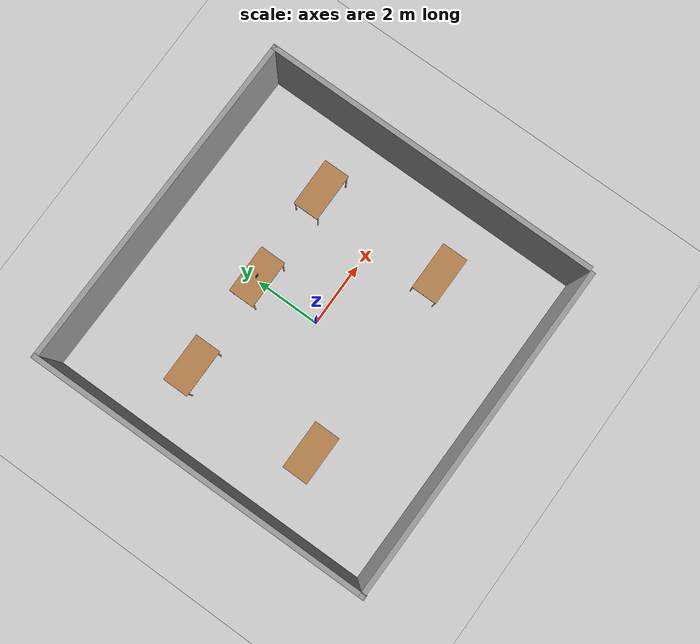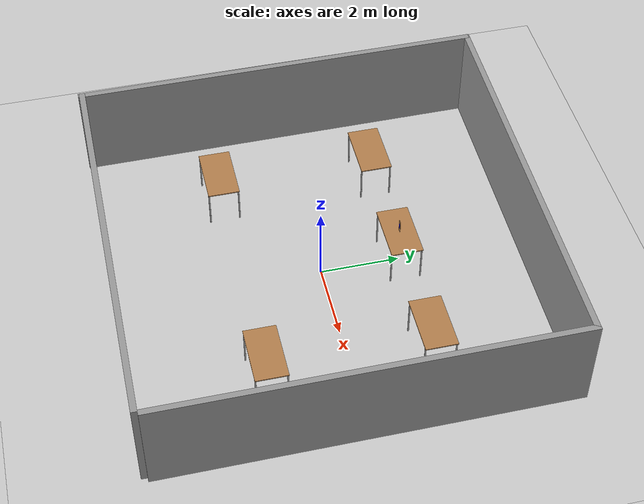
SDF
<sdf version="1.7">
 <world name="default">
  <scene><ambient>0.4 0.4 0.4 1</ambient><background>0.7 0.7 0.7 1</background><shadows>1</shadows></scene>
  <light name="sun" type="directional">
   <pose>0 0 10 0 -0 0</pose>
   <diffuse>0.8 0.8 0.8 1</diffuse>
   <specular>0.2 0.2 0.2 1</specular>
   <attenuation>
    <range>1000</range>
    <constant>0.9</constant>
    <linear>0.01</linear>
    <quadratic>0.001</quadratic>
   </attenuation>
   <direction>-0.5 0.1 -0.9</direction>
   <spot><inner_angle>0</inner_angle><outer_angle>0</outer_angle><falloff>0</falloff></spot>
  </light>
  <model name="ground_plane">
   <static>1</static>
   <link name="link">
    <collision name="collision">
     <geometry><plane><normal>0 0 1</normal><size>100 100</size></plane></geometry>
     <surface><friction><ode><mu>100</mu><mu2>50</mu2></ode></friction></surface>
    </collision>
    <visual name="visual">
     <cast_shadows>0</cast_shadows>
     <geometry><plane><normal>0 0 1</normal><size>100 100</size></plane></geometry>
     <material>
      <script><uri>file://media/materials/scripts/gazebo.material</uri><name>Gazebo/Grey</name></script>
     </material>
    </visual>
   </link>
  </model>
  <physics type="ode">
   <real_time_update_rate>1000</real_time_update_rate>
   <max_step_size>0.001</max_step_size>
   <real_time_factor>1</real_time_factor>
   <ode>
    <solver>
     <type>quick</type>
     <iters>150</iters>
     <precon_iters>0</precon_iters>
     <sor>1.4</sor>
     <use_dynamic_moi_rescaling>1</use_dynamic_moi_rescaling>
    </solver>
    <constraints>
     <cfm>1e-05</cfm>
     <erp>0.2</erp>
     <contact_max_correcting_vel>2000</contact_max_correcting_vel>
     <contact_surface_layer>0.01</contact_surface_layer>
    </constraints>
   </ode>
  </physics>
  <gravity>0 0 -9.8</gravity>
  <magnetic_field>6e-06 2.3e-05 -4.2e-05</magnetic_field>
  <atmosphere type="adiabatic"/>
  <spherical_coordinates>
   <surface_model>EARTH_WGS84</surface_model>
   <latitude_deg>0</latitude_deg>
   <longitude_deg>0</longitude_deg>
   <elevation>0</elevation>
   <heading_deg>0</heading_deg>
  </spherical_coordinates>
  <model name="world">
   <pose>-0.027887 0.002538 0 0 -0 0</pose>
   <link name="Wall_11">
    <collision name="Wall_11_Collision">
     <geometry><box><size>10.4422 0.15 2.5</size></box></geometry>
     <pose>0 0 1.25 0 -0 0</pose>
    </collision>
    <visual name="Wall_11_Visual">
     <pose>0 0 1.25 0 -0 0</pose>
     <geometry><box><size>10.4422 0.15 2.5</size></box></geometry>
     <material>
      <script><uri>file://media/materials/scripts/gazebo.material</uri><name>Gazebo/Grey</name></script>
      <ambient>1 1 1 1</ambient>
     </material>
     <meta><layer>0</layer></meta>
    </visual>
    <pose>-5.09946 0.019253 0 0 -0 -1.56533</pose>
   </link>
   <link name="Wall_3">
    <collision name="Wall_3_Collision">
     <geometry><box><size>10.3804 0.15 2.5</size></box></geometry>
     <pose>0 0 1.25 0 -0 0</pose>
    </collision>
    <visual name="Wall_3_Visual">
     <pose>0 0 1.25 0 -0 0</pose>
     <geometry><box><size>10.3804 0.15 2.5</size></box></geometry>
     <material>
      <script><uri>file://media/materials/scripts/gazebo.material</uri><name>Gazebo/Grey</name></script>
      <ambient>1 1 1 1</ambient>
     </material>
     <meta><layer>0</layer></meta>
    </visual>
    <pose>-0.012813 5.12502 0 0 -0 -0.013069</pose>
   </link>
   <link name="Wall_5">
    <collision name="Wall_5_Collision">
     <geometry><box><size>10.2455 0.15 2.5</size></box></geometry>
     <pose>0 0 1.25 0 -0 0</pose>
    </collision>
    <visual name="Wall_5_Visual">
     <pose>0 0 1.25 0 -0 0</pose>
     <geometry><box><size>10.2455 0.15 2.5</size></box></geometry>
     <material>
      <script><uri>file://media/materials/scripts/gazebo.material</uri><name>Gazebo/Grey</name></script>
      <ambient>1 1 1 1</ambient>
     </material>
     <meta><layer>0</layer></meta>
    </visual>
    <pose>-0.023799 -5.14616 0 0 -0 -0.009113</pose>
   </link>
   <link name="Wall_7">
    <collision name="Wall_7_Collision">
     <geometry><box><size>10.25 0.15 2.5</size></box></geometry>
     <pose>0 0 1.25 0 -0 0</pose>
    </collision>
    <visual name="Wall_7_Visual">
     <pose>0 0 1.25 0 -0 0</pose>
     <geometry><box><size>10.25 0.15 2.5</size></box></geometry>
     <material>
      <script><uri>file://media/materials/scripts/gazebo.material</uri><name>Gazebo/Grey</name></script>
      <ambient>1 1 1 1</ambient>
     </material>
     <meta><layer>0</layer></meta>
    </visual>
    <pose>5.12854 0.008169 0 0 -0 -1.5708</pose>
   </link>
   <static>1</static>
  </model>
  <model name="table">
   <static>1</static>
   <link name="link">
    <collision name="navigation_laser_blocker">
     <pose>0 0 0.48 0 -0 0</pose>
     <geometry><box><size>1.55 0.85 0.92</size></box></geometry>
    </collision>
    <collision name="surface">
     <pose>0 0 1 0 -0 0</pose>
     <geometry><box><size>1.5 0.8 0.03</size></box></geometry>
     <surface><friction><ode><mu>0.6</mu><mu2>0.6</mu2></ode></friction></surface>
    </collision>
    <visual name="visual1">
     <pose>0 0 1 0 -0 0</pose>
     <geometry><box><size>1.5 0.8 0.03</size></box></geometry>
     <material>
      <script><uri>file://media/materials/scripts/gazebo.material</uri><name>Gazebo/Wood</name></script>
     </material>
    </visual>
    <collision name="front_left_leg">
     <pose>0.68 0.38 0.5 0 -0 0</pose>
     <geometry><cylinder><radius>0.02</radius><length>1</length></cylinder></geometry>
    </collision>
    <visual name="front_left_leg">
     <pose>0.68 0.38 0.5 0 -0 0</pose>
     <geometry><cylinder><radius>0.02</radius><length>1</length></cylinder></geometry>
     <material>
      <script><uri>file://media/materials/scripts/gazebo.material</uri><name>Gazebo/Grey</name></script>
     </material>
    </visual>
    <collision name="front_right_leg">
     <pose>0.68 -0.38 0.5 0 -0 0</pose>
     <geometry><cylinder><radius>0.02</radius><length>1</length></cylinder></geometry>
    </collision>
    <visual name="front_right_leg">
     <pose>0.68 -0.38 0.5 0 -0 0</pose>
     <geometry><cylinder><radius>0.02</radius><length>1</length></cylinder></geometry>
     <material>
      <script><uri>file://media/materials/scripts/gazebo.material</uri><name>Gazebo/Grey</name></script>
     </material>
    </visual>
    <collision name="back_right_leg">
     <pose>-0.68 -0.38 0.5 0 -0 0</pose>
     <geometry><cylinder><radius>0.02</radius><length>1</length></cylinder></geometry>
    </collision>
    <visual name="back_right_leg">
     <pose>-0.68 -0.38 0.5 0 -0 0</pose>
     <geometry><cylinder><radius>0.02</radius><length>1</length></cylinder></geometry>
     <material>
      <script><uri>file://media/materials/scripts/gazebo.material</uri><name>Gazebo/Grey</name></script>
     </material>
    </visual>
    <collision name="back_left_leg">
     <pose>-0.68 0.38 0.5 0 -0 0</pose>
     <geometry><cylinder><radius>0.02</radius><length>1</length></cylinder></geometry>
    </collision>
    <visual name="back_left_leg">
     <pose>-0.68 0.38 0.5 0 -0 0</pose>
     <geometry><cylinder><radius>0.02</radius><length>1</length></cylinder></geometry>
     <material>
      <script><uri>file://media/materials/scripts/gazebo.material</uri><name>Gazebo/Grey</name></script>
     </material>
    </visual>
    <collision name="lidar_skirt">
     <pose>0 0 0.075 0 0 0</pose>
     <geometry><box><size>1.3 0.5 0.15</size></box></geometry>
    </collision>
   </link>
   <pose>-3 -2 0 0 0 3.14</pose>
  </model>
  <model name="table_0">
   <static>1</static>
   <link name="link">
    <collision name="navigation_laser_blocker">
     <pose>0 0 0.48 0 -0 0</pose>
     <geometry><box><size>1.55 0.85 0.92</size></box></geometry>
    </collision>
    <collision name="surface">
     <pose>0 0 1 0 -0 0</pose>
     <geometry><box><size>1.5 0.8 0.03</size></box></geometry>
     <surface><friction><ode><mu>0.6</mu><mu2>0.6</mu2></ode></friction></surface>
    </collision>
    <visual name="visual1">
     <pose>0 0 1 0 -0 0</pose>
     <geometry><box><size>1.5 0.8 0.03</size></box></geometry>
     <material>
      <script><uri>file://media/materials/scripts/gazebo.material</uri><name>Gazebo/Wood</name></script>
     </material>
    </visual>
    <collision name="front_left_leg">
     <pose>0.68 0.38 0.5 0 -0 0</pose>
     <geometry><cylinder><radius>0.02</radius><length>1</length></cylinder></geometry>
    </collision>
    <visual name="front_left_leg">
     <pose>0.68 0.38 0.5 0 -0 0</pose>
     <geometry><cylinder><radius>0.02</radius><length>1</length></cylinder></geometry>
     <material>
      <script><uri>file://media/materials/scripts/gazebo.material</uri><name>Gazebo/Grey</name></script>
     </material>
    </visual>
    <collision name="front_right_leg">
     <pose>0.68 -0.38 0.5 0 -0 0</pose>
     <geometry><cylinder><radius>0.02</radius><length>1</length></cylinder></geometry>
    </collision>
    <visual name="front_right_leg">
     <pose>0.68 -0.38 0.5 0 -0 0</pose>
     <geometry><cylinder><radius>0.02</radius><length>1</length></cylinder></geometry>
     <material>
      <script><uri>file://media/materials/scripts/gazebo.material</uri><name>Gazebo/Grey</name></script>
     </material>
    </visual>
    <collision name="back_right_leg">
     <pose>-0.68 -0.38 0.5 0 -0 0</pose>
     <geometry><cylinder><radius>0.02</radius><length>1</length></cylinder></geometry>
    </collision>
    <visual name="back_right_leg">
     <pose>-0.68 -0.38 0.5 0 -0 0</pose>
     <geometry><cylinder><radius>0.02</radius><length>1</length></cylinder></geometry>
     <material>
      <script><uri>file://media/materials/scripts/gazebo.material</uri><name>Gazebo/Grey</name></script>
     </material>
    </visual>
    <collision name="back_left_leg">
     <pose>-0.68 0.38 0.5 0 -0 0</pose>
     <geometry><cylinder><radius>0.02</radius><length>1</length></cylinder></geometry>
    </collision>
    <visual name="back_left_leg">
     <pose>-0.68 0.38 0.5 0 -0 0</pose>
     <geometry><cylinder><radius>0.02</radius><length>1</length></cylinder></geometry>
     <material>
      <script><uri>file://media/materials/scripts/gazebo.material</uri><name>Gazebo/Grey</name></script>
     </material>
    </visual>
    <collision name="lidar_skirt">
     <pose>0 0 0.075 0 0 0</pose>
     <geometry><box><size>1.3 0.5 0.15</size></box></geometry>
    </collision>
   </link>
   <pose>-3 2 0 0 0 0</pose>
  </model>
  <model name="table_1">
   <static>1</static>
   <link name="link">
    <collision name="navigation_laser_blocker">
     <pose>0 0 0.48 0 -0 0</pose>
     <geometry><box><size>1.55 0.85 0.92</size></box></geometry>
    </collision>
    <collision name="surface">
     <pose>0 0 1 0 -0 0</pose>
     <geometry><box><size>1.5 0.8 0.03</size></box></geometry>
     <surface><friction><ode><mu>0.6</mu><mu2>0.6</mu2></ode></friction></surface>
    </collision>
    <visual name="visual1">
     <pose>0 0 1 0 -0 0</pose>
     <geometry><box><size>1.5 0.8 0.03</size></box></geometry>
     <material>
      <script><uri>file://media/materials/scripts/gazebo.material</uri><name>Gazebo/Wood</name></script>
     </material>
    </visual>
    <collision name="front_left_leg">
     <pose>0.68 0.38 0.5 0 -0 0</pose>
     <geometry><cylinder><radius>0.02</radius><length>1</length></cylinder></geometry>
    </collision>
    <visual name="front_left_leg">
     <pose>0.68 0.38 0.5 0 -0 0</pose>
     <geometry><cylinder><radius>0.02</radius><length>1</length></cylinder></geometry>
     <material>
      <script><uri>file://media/materials/scripts/gazebo.material</uri><name>Gazebo/Grey</name></script>
     </material>
    </visual>
    <collision name="front_right_leg">
     <pose>0.68 -0.38 0.5 0 -0 0</pose>
     <geometry><cylinder><radius>0.02</radius><length>1</length></cylinder></geometry>
    </collision>
    <visual name="front_right_leg">
     <pose>0.68 -0.38 0.5 0 -0 0</pose>
     <geometry><cylinder><radius>0.02</radius><length>1</length></cylinder></geometry>
     <material>
      <script><uri>file://media/materials/scripts/gazebo.material</uri><name>Gazebo/Grey</name></script>
     </material>
    </visual>
    <collision name="back_right_leg">
     <pose>-0.68 -0.38 0.5 0 -0 0</pose>
     <geometry><cylinder><radius>0.02</radius><length>1</length></cylinder></geometry>
    </collision>
    <visual name="back_right_leg">
     <pose>-0.68 -0.38 0.5 0 -0 0</pose>
     <geometry><cylinder><radius>0.02</radius><length>1</length></cylinder></geometry>
     <material>
      <script><uri>file://media/materials/scripts/gazebo.material</uri><name>Gazebo/Grey</name></script>
     </material>
    </visual>
    <collision name="back_left_leg">
     <pose>-0.68 0.38 0.5 0 -0 0</pose>
     <geometry><cylinder><radius>0.02</radius><length>1</length></cylinder></geometry>
    </collision>
    <visual name="back_left_leg">
     <pose>-0.68 0.38 0.5 0 -0 0</pose>
     <geometry><cylinder><radius>0.02</radius><length>1</length></cylinder></geometry>
     <material>
      <script><uri>file://media/materials/scripts/gazebo.material</uri><name>Gazebo/Grey</name></script>
     </material>
    </visual>
    <collision name="lidar_skirt">
     <pose>0 0 0.075 0 0 0</pose>
     <geometry><box><size>1.3 0.5 0.15</size></box></geometry>
    </collision>
   </link>
   <pose>0 2 0 0 0 0</pose>
  </model>
  <model name="table_2">
   <static>1</static>
   <link name="link">
    <collision name="navigation_laser_blocker">
     <pose>0 0 0.48 0 -0 0</pose>
     <geometry><box><size>1.55 0.85 0.92</size></box></geometry>
    </collision>
    <collision name="surface">
     <pose>0 0 1 0 -0 0</pose>
     <geometry><box><size>1.5 0.8 0.03</size></box></geometry>
     <surface><friction><ode><mu>0.6</mu><mu2>0.6</mu2></ode></friction></surface>
    </collision>
    <visual name="visual1">
     <pose>0 0 1 0 -0 0</pose>
     <geometry><box><size>1.5 0.8 0.03</size></box></geometry>
     <material>
      <script><uri>file://media/materials/scripts/gazebo.material</uri><name>Gazebo/Wood</name></script>
     </material>
    </visual>
    <collision name="front_left_leg">
     <pose>0.68 0.38 0.5 0 -0 0</pose>
     <geometry><cylinder><radius>0.02</radius><length>1</length></cylinder></geometry>
    </collision>
    <visual name="front_left_leg">
     <pose>0.68 0.38 0.5 0 -0 0</pose>
     <geometry><cylinder><radius>0.02</radius><length>1</length></cylinder></geometry>
     <material>
      <script><uri>file://media/materials/scripts/gazebo.material</uri><name>Gazebo/Grey</name></script>
     </material>
    </visual>
    <collision name="front_right_leg">
     <pose>0.68 -0.38 0.5 0 -0 0</pose>
     <geometry><cylinder><radius>0.02</radius><length>1</length></cylinder></geometry>
    </collision>
    <visual name="front_right_leg">
     <pose>0.68 -0.38 0.5 0 -0 0</pose>
     <geometry><cylinder><radius>0.02</radius><length>1</length></cylinder></geometry>
     <material>
      <script><uri>file://media/materials/scripts/gazebo.material</uri><name>Gazebo/Grey</name></script>
     </material>
    </visual>
    <collision name="back_right_leg">
     <pose>-0.68 -0.38 0.5 0 -0 0</pose>
     <geometry><cylinder><radius>0.02</radius><length>1</length></cylinder></geometry>
    </collision>
    <visual name="back_right_leg">
     <pose>-0.68 -0.38 0.5 0 -0 0</pose>
     <geometry><cylinder><radius>0.02</radius><length>1</length></cylinder></geometry>
     <material>
      <script><uri>file://media/materials/scripts/gazebo.material</uri><name>Gazebo/Grey</name></script>
     </material>
    </visual>
    <collision name="back_left_leg">
     <pose>-0.68 0.38 0.5 0 -0 0</pose>
     <geometry><cylinder><radius>0.02</radius><length>1</length></cylinder></geometry>
    </collision>
    <visual name="back_left_leg">
     <pose>-0.68 0.38 0.5 0 -0 0</pose>
     <geometry><cylinder><radius>0.02</radius><length>1</length></cylinder></geometry>
     <material>
      <script><uri>file://media/materials/scripts/gazebo.material</uri><name>Gazebo/Grey</name></script>
     </material>
    </visual>
    <collision name="lidar_skirt">
     <pose>0 0 0.075 0 0 0</pose>
     <geometry><box><size>1.3 0.5 0.15</size></box></geometry>
    </collision>
   </link>
   <pose>3 -2 0 0 0 3.14</pose>
  </model>
  <model name="table_3">
   <static>1</static>
   <link name="link">
    <collision name="navigation_laser_blocker">
     <pose>0 0 0.48 0 -0 0</pose>
     <geometry><box><size>1.55 0.85 0.92</size></box></geometry>
    </collision>
    <collision name="surface">
     <pose>0 0 1 0 -0 0</pose>
     <geometry><box><size>1.5 0.8 0.03</size></box></geometry>
     <surface><friction><ode><mu>0.6</mu><mu2>0.6</mu2></ode></friction></surface>
    </collision>
    <visual name="visual1">
     <pose>0 0 1 0 -0 0</pose>
     <geometry><box><size>1.5 0.8 0.03</size></box></geometry>
     <material>
      <script><uri>file://media/materials/scripts/gazebo.material</uri><name>Gazebo/Wood</name></script>
     </material>
    </visual>
    <collision name="front_left_leg">
     <pose>0.68 0.38 0.5 0 -0 0</pose>
     <geometry><cylinder><radius>0.02</radius><length>1</length></cylinder></geometry>
    </collision>
    <visual name="front_left_leg">
     <pose>0.68 0.38 0.5 0 -0 0</pose>
     <geometry><cylinder><radius>0.02</radius><length>1</length></cylinder></geometry>
     <material>
      <script><uri>file://media/materials/scripts/gazebo.material</uri><name>Gazebo/Grey</name></script>
     </material>
    </visual>
    <collision name="front_right_leg">
     <pose>0.68 -0.38 0.5 0 -0 0</pose>
     <geometry><cylinder><radius>0.02</radius><length>1</length></cylinder></geometry>
    </collision>
    <visual name="front_right_leg">
     <pose>0.68 -0.38 0.5 0 -0 0</pose>
     <geometry><cylinder><radius>0.02</radius><length>1</length></cylinder></geometry>
     <material>
      <script><uri>file://media/materials/scripts/gazebo.material</uri><name>Gazebo/Grey</name></script>
     </material>
    </visual>
    <collision name="back_right_leg">
     <pose>-0.68 -0.38 0.5 0 -0 0</pose>
     <geometry><cylinder><radius>0.02</radius><length>1</length></cylinder></geometry>
    </collision>
    <visual name="back_right_leg">
     <pose>-0.68 -0.38 0.5 0 -0 0</pose>
     <geometry><cylinder><radius>0.02</radius><length>1</length></cylinder></geometry>
     <material>
      <script><uri>file://media/materials/scripts/gazebo.material</uri><name>Gazebo/Grey</name></script>
     </material>
    </visual>
    <collision name="back_left_leg">
     <pose>-0.68 0.38 0.5 0 -0 0</pose>
     <geometry><cylinder><radius>0.02</radius><length>1</length></cylinder></geometry>
    </collision>
    <visual name="back_left_leg">
     <pose>-0.68 0.38 0.5 0 -0 0</pose>
     <geometry><cylinder><radius>0.02</radius><length>1</length></cylinder></geometry>
     <material>
      <script><uri>file://media/materials/scripts/gazebo.material</uri><name>Gazebo/Grey</name></script>
     </material>
    </visual>
    <collision name="lidar_skirt">
     <pose>0 0 0.075 0 0 0</pose>
     <geometry><box><size>1.3 0.5 0.15</size></box></geometry>
    </collision>
   </link>
   <pose>3 2 0 0 0 0</pose>
  </model>
  <model name="wooden_board">
   <static>1</static>
   <link name="base">
    <pose>0 0 0.00523 0 -0 0</pose>
    <inertial>
     <mass>0.2765</mass>
     <inertia>
      <ixx>0.0025148</ixx>
      <ixy>0</ixy>
      <ixz>0</ixz>
      <iyy>0.00024037</iyy>
      <iyz>0</iyz>
      <izz>0.00275013</izz>
     </inertia>
    </inertial>
    <collision name="collision">
     <geometry><box><size>0.1016 0.3302 0.01046</size></box></geometry>
     <surface>
      <contact>
       <poissons_ratio>0.347</poissons_ratio>
       <elastic_modulus>8.8e+09</elastic_modulus>
       <ode><kp>100000</kp><kd>100</kd><max_vel>100</max_vel><min_depth>0.001</min_depth></ode>
      </contact>
      <friction>
       <torsional>
        <coefficient>1</coefficient>
        <use_patch_radius>0</use_patch_radius>
        <surface_radius>0.01</surface_radius>
       </torsional>
      </friction>
     </surface>
    </collision>
    <visual name="visual">
     <geometry><box><size>0.1016 0.3302 0.01046</size></box></geometry>
     <material>
      <script><uri>file://media/materials/scripts/gazebo.material</uri><name>Gazebo/Wood</name></script>
     </material>
    </visual>
    <visual name="board_target_mark">
     <pose>0 0 0.007 0 0 0</pose>
     <geometry><box><size>0.065 0.16 0.003</size></box></geometry>
     <material><ambient>0 0 1 1</ambient><diffuse>0 0 1 1</diffuse></material>
    </visual>
    <visual name="tee_nut_1">
     <pose>0 -0.116 0 0 -0 0</pose>
     <geometry><cylinder><radius>0.00635</radius><length>0.0105646</length></cylinder></geometry>
     <material>
      <script><uri>file://media/materials/scripts/gazebo.material</uri><name>Gazebo/Grey</name></script>
     </material>
    </visual>
    <visual name="tee_nut_2">
     <pose>0 -0.038 0 0 -0 0</pose>
     <geometry><cylinder><radius>0.00635</radius><length>0.0105646</length></cylinder></geometry>
     <material>
      <script><uri>file://media/materials/scripts/gazebo.material</uri><name>Gazebo/Grey</name></script>
     </material>
    </visual>
    <visual name="tee_nut_3">
     <pose>0 0.038 0 0 -0 0</pose>
     <geometry><cylinder><radius>0.00635</radius><length>0.0105646</length></cylinder></geometry>
     <material>
      <script><uri>file://media/materials/scripts/gazebo.material</uri><name>Gazebo/Grey</name></script>
     </material>
    </visual>
    <visual name="tee_nut_4">
     <pose>0 0.116 0 0 -0 0</pose>
     <geometry><cylinder><radius>0.00635</radius><length>0.0105646</length></cylinder></geometry>
     <material>
      <script><uri>file://media/materials/scripts/gazebo.material</uri><name>Gazebo/Grey</name></script>
     </material>
    </visual>
   </link>
   <pose>0 2 1.18 1.5708 0 0</pose>
  </model>
 </world>
</sdf>
